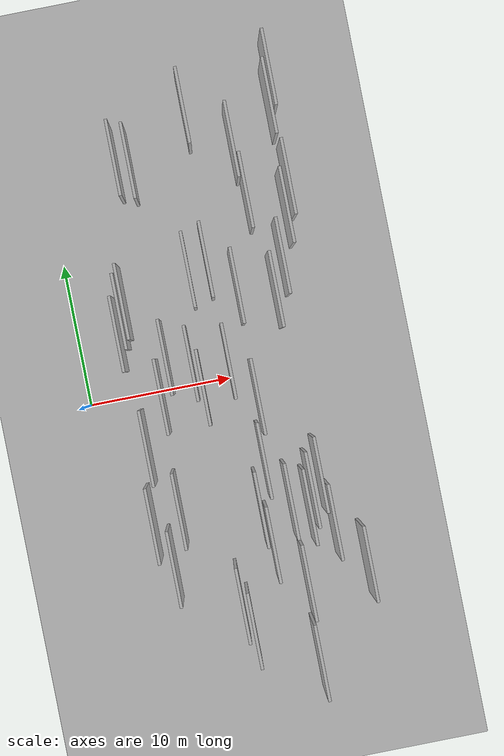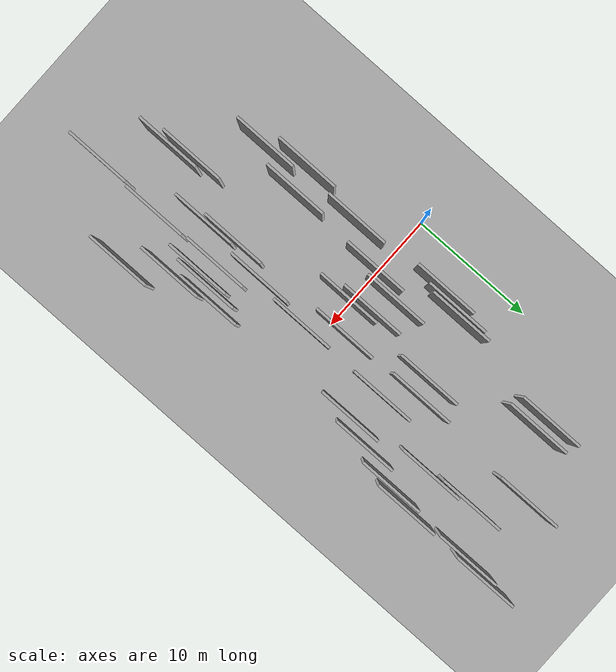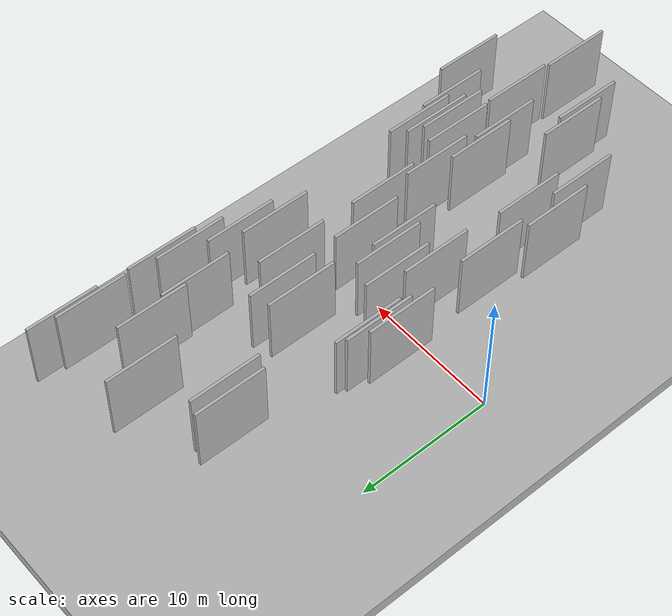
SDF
<?xml version="1.0" encoding="utf-8"?>

<sdf version="1.6">

   <world name="default">

      <gui fullscreen="0">

         <camera name="user_camera">

            <pose>-15 0 4.57585 0 0 0</pose>

            <view_controller>orbit</view_controller>

         </camera>

      </gui>

      <scene>

         <sky>

           <clouds>

             <speed>12</speed>

           </clouds>

         </sky>

         <ambient>0.4 0.4 0.4 1</ambient>

         <background>0.7 0.7 0.7 1</background>

         <shadows>1</shadows>

      </scene>

      <gravity>0 0 -9.8066</gravity>

      <magnetic_field>6e-06 2.3e-05 -4.2e-05</magnetic_field>

      <physics default="0" name="default_physics" type="ode">

         <ode>

            <solver>

               <type>quick</type>

               <iters>10</iters>

               <sor>1.0</sor>

               <use_dynamic_moi_rescaling>0</use_dynamic_moi_rescaling>

            </solver>

            <constraints>

               <cfm>0</cfm>

               <erp>0.2</erp>

               <contact_max_correcting_vel>100</contact_max_correcting_vel>

               <contact_surface_layer>0.001</contact_surface_layer>

            </constraints>

         </ode>

         <max_step_size>0.004</max_step_size>

         <real_time_factor>1</real_time_factor>

         <real_time_update_rate>250</real_time_update_rate>

      </physics>

      <light name="sun" type="directional">

         <cast_shadows>1</cast_shadows>

         <pose>0 0 10 0 0 0</pose>

         <diffuse>0.8 0.8 0.8 1</diffuse>

         <specular>0.2 0.2 0.2 1</specular>

         <attenuation>

            <range>1000</range>

            <constant>0.9</constant>

            <linear>0.01</linear>

            <quadratic>0.001</quadratic>

         </attenuation>

         <direction>-0.5 0.1 -0.9</direction>

      </light>

      <include>

         <name>ground_plane_1</name>

         <uri>model://HANNAS_ground_plane</uri>

         <pose>0 0 0  0 0 0</pose>

      </include>

      <include>

         <name>ground_plane_2</name>

         <uri>model://HANNAS_ground_plane</uri>

         <pose>100 0 0  0 0 0</pose>

      </include>

      <model name="HANNAS_wall_1">

         <static>1</static>

         <pose frame="">5.2941 -0.2255 5.0 0.000000 0.000000 1.570796</pose>

         <link name="link">

            <pose frame="">0 0 2.50 0 0 0</pose>

            <collision name="collision">

               <geometry>

                  <box>

                     <size>5.00 0.2 5.00</size>

                  </box>

               </geometry>

               <max_contacts>10</max_contacts>

               <surface>

                  <contact>

                     <ode/>

                  </contact>

                  <bounce/>

                  <friction>

                     <torsional>

                        <ode/>

                     </torsional>

                     <ode/>

                  </friction>

               </surface>

            </collision>

            <visual name="visual">

               <cast_shadows>0</cast_shadows>

               <geometry>

                  <box>

                     <size>5.00 0.2 5.00</size>

                  </box>

               </geometry>

               <material>

                  <script>

                     <uri>model://HANNAS_wall/materials/scripts</uri>

                     <uri>model://HANNAS_wall/materials/textures</uri>

                     <name>vrc/HANNAS_wall</name>

                  </script>

               </material>

            </visual>

            <self_collide>0</self_collide>

            <enable_wind>0</enable_wind>

            <kinematic>0</kinematic>

         </link>

      </model>

      <model name="HANNAS_wall_2">

         <static>1</static>

         <pose frame="">13.7056 -7.9675 5.0 0.000000 0.000000 1.570796</pose>

         <link name="link">

            <pose frame="">0 0 2.50 0 0 0</pose>

            <collision name="collision">

               <geometry>

                  <box>

                     <size>5.00 0.2 5.00</size>

                  </box>

               </geometry>

               <max_contacts>10</max_contacts>

               <surface>

                  <contact>

                     <ode/>

                  </contact>

                  <bounce/>

                  <friction>

                     <torsional>

                        <ode/>

                     </torsional>

                     <ode/>

                  </friction>

               </surface>

            </collision>

            <visual name="visual">

               <cast_shadows>0</cast_shadows>

               <geometry>

                  <box>

                     <size>5.00 0.2 5.00</size>

                  </box>

               </geometry>

               <material>

                  <script>

                     <uri>model://HANNAS_wall/materials/scripts</uri>

                     <uri>model://HANNAS_wall/materials/textures</uri>

                     <name>vrc/HANNAS_wall</name>

                  </script>

               </material>

            </visual>

            <self_collide>0</self_collide>

            <enable_wind>0</enable_wind>

            <kinematic>0</kinematic>

         </link>

      </model>

      <model name="HANNAS_wall_3">

         <static>1</static>

         <pose frame="">14.7441 7.1923 5.0 0.000000 0.000000 1.570796</pose>

         <link name="link">

            <pose frame="">0 0 2.50 0 0 0</pose>

            <collision name="collision">

               <geometry>

                  <box>

                     <size>5.00 0.2 5.00</size>

                  </box>

               </geometry>

               <max_contacts>10</max_contacts>

               <surface>

                  <contact>

                     <ode/>

                  </contact>

                  <bounce/>

                  <friction>

                     <torsional>

                        <ode/>

                     </torsional>

                     <ode/>

                  </friction>

               </surface>

            </collision>

            <visual name="visual">

               <cast_shadows>0</cast_shadows>

               <geometry>

                  <box>

                     <size>5.00 0.2 5.00</size>

                  </box>

               </geometry>

               <material>

                  <script>

                     <uri>model://HANNAS_wall/materials/scripts</uri>

                     <uri>model://HANNAS_wall/materials/textures</uri>

                     <name>vrc/HANNAS_wall</name>

                  </script>

               </material>

            </visual>

            <self_collide>0</self_collide>

            <enable_wind>0</enable_wind>

            <kinematic>0</kinematic>

         </link>

      </model>

      <model name="HANNAS_wall_4">

         <static>1</static>

         <pose frame="">7.5985 1.5305 5.0 0.000000 0.000000 1.570796</pose>

         <link name="link">

            <pose frame="">0 0 2.50 0 0 0</pose>

            <collision name="collision">

               <geometry>

                  <box>

                     <size>5.00 0.2 5.00</size>

                  </box>

               </geometry>

               <max_contacts>10</max_contacts>

               <surface>

                  <contact>

                     <ode/>

                  </contact>

                  <bounce/>

                  <friction>

                     <torsional>

                        <ode/>

                     </torsional>

                     <ode/>

                  </friction>

               </surface>

            </collision>

            <visual name="visual">

               <cast_shadows>0</cast_shadows>

               <geometry>

                  <box>

                     <size>5.00 0.2 5.00</size>

                  </box>

               </geometry>

               <material>

                  <script>

                     <uri>model://HANNAS_wall/materials/scripts</uri>

                     <uri>model://HANNAS_wall/materials/textures</uri>

                     <name>vrc/HANNAS_wall</name>

                  </script>

               </material>

            </visual>

            <self_collide>0</self_collide>

            <enable_wind>0</enable_wind>

            <kinematic>0</kinematic>

         </link>

      </model>

      <model name="HANNAS_wall_5">

         <static>1</static>

         <pose frame="">14.7294 -10.2809 5.0 0.000000 0.000000 1.570796</pose>

         <link name="link">

            <pose frame="">0 0 2.50 0 0 0</pose>

            <collision name="collision">

               <geometry>

                  <box>

                     <size>5.00 0.2 5.00</size>

                  </box>

               </geometry>

               <max_contacts>10</max_contacts>

               <surface>

                  <contact>

                     <ode/>

                  </contact>

                  <bounce/>

                  <friction>

                     <torsional>

                        <ode/>

                     </torsional>

                     <ode/>

                  </friction>

               </surface>

            </collision>

            <visual name="visual">

               <cast_shadows>0</cast_shadows>

               <geometry>

                  <box>

                     <size>5.00 0.2 5.00</size>

                  </box>

               </geometry>

               <material>

                  <script>

                     <uri>model://HANNAS_wall/materials/scripts</uri>

                     <uri>model://HANNAS_wall/materials/textures</uri>

                     <name>vrc/HANNAS_wall</name>

                  </script>

               </material>

            </visual>

            <self_collide>0</self_collide>

            <enable_wind>0</enable_wind>

            <kinematic>0</kinematic>

         </link>

      </model>

      <model name="HANNAS_wall_6">

         <static>1</static>

         <pose frame="">3.2728 4.2991 5.0 0.000000 0.000000 1.570796</pose>

         <link name="link">

            <pose frame="">0 0 2.50 0 0 0</pose>

            <collision name="collision">

               <geometry>

                  <box>

                     <size>5.00 0.2 5.00</size>

                  </box>

               </geometry>

               <max_contacts>10</max_contacts>

               <surface>

                  <contact>

                     <ode/>

                  </contact>

                  <bounce/>

                  <friction>

                     <torsional>

                        <ode/>

                     </torsional>

                     <ode/>

                  </friction>

               </surface>

            </collision>

            <visual name="visual">

               <cast_shadows>0</cast_shadows>

               <geometry>

                  <box>

                     <size>5.00 0.2 5.00</size>

                  </box>

               </geometry>

               <material>

                  <script>

                     <uri>model://HANNAS_wall/materials/scripts</uri>

                     <uri>model://HANNAS_wall/materials/textures</uri>

                     <name>vrc/HANNAS_wall</name>

                  </script>

               </material>

            </visual>

            <self_collide>0</self_collide>

            <enable_wind>0</enable_wind>

            <kinematic>0</kinematic>

         </link>

      </model>

      <model name="HANNAS_wall_7">

         <static>1</static>

         <pose frame="">10.5431 -10.9460 5.0 0.000000 0.000000 1.570796</pose>

         <link name="link">

            <pose frame="">0 0 2.50 0 0 0</pose>

            <collision name="collision">

               <geometry>

                  <box>

                     <size>5.00 0.2 5.00</size>

                  </box>

               </geometry>

               <max_contacts>10</max_contacts>

               <surface>

                  <contact>

                     <ode/>

                  </contact>

                  <bounce/>

                  <friction>

                     <torsional>

                        <ode/>

                     </torsional>

                     <ode/>

                  </friction>

               </surface>

            </collision>

            <visual name="visual">

               <cast_shadows>0</cast_shadows>

               <geometry>

                  <box>

                     <size>5.00 0.2 5.00</size>

                  </box>

               </geometry>

               <material>

                  <script>

                     <uri>model://HANNAS_wall/materials/scripts</uri>

                     <uri>model://HANNAS_wall/materials/textures</uri>

                     <name>vrc/HANNAS_wall</name>

                  </script>

               </material>

            </visual>

            <self_collide>0</self_collide>

            <enable_wind>0</enable_wind>

            <kinematic>0</kinematic>

         </link>

      </model>

      <model name="HANNAS_wall_8">

         <static>1</static>

         <pose frame="">15.8792 17.4398 5.0 0.000000 0.000000 1.570796</pose>

         <link name="link">

            <pose frame="">0 0 2.50 0 0 0</pose>

            <collision name="collision">

               <geometry>

                  <box>

                     <size>5.00 0.2 5.00</size>

                  </box>

               </geometry>

               <max_contacts>10</max_contacts>

               <surface>

                  <contact>

                     <ode/>

                  </contact>

                  <bounce/>

                  <friction>

                     <torsional>

                        <ode/>

                     </torsional>

                     <ode/>

                  </friction>

               </surface>

            </collision>

            <visual name="visual">

               <cast_shadows>0</cast_shadows>

               <geometry>

                  <box>

                     <size>5.00 0.2 5.00</size>

                  </box>

               </geometry>

               <material>

                  <script>

                     <uri>model://HANNAS_wall/materials/scripts</uri>

                     <uri>model://HANNAS_wall/materials/textures</uri>

                     <name>vrc/HANNAS_wall</name>

                  </script>

               </material>

            </visual>

            <self_collide>0</self_collide>

            <enable_wind>0</enable_wind>

            <kinematic>0</kinematic>

         </link>

      </model>

      <model name="HANNAS_wall_9">

         <static>1</static>

         <pose frame="">9.8408 7.9051 5.0 0.000000 0.000000 1.570796</pose>

         <link name="link">

            <pose frame="">0 0 2.50 0 0 0</pose>

            <collision name="collision">

               <geometry>

                  <box>

                     <size>5.00 0.2 5.00</size>

                  </box>

               </geometry>

               <max_contacts>10</max_contacts>

               <surface>

                  <contact>

                     <ode/>

                  </contact>

                  <bounce/>

                  <friction>

                     <torsional>

                        <ode/>

                     </torsional>

                     <ode/>

                  </friction>

               </surface>

            </collision>

            <visual name="visual">

               <cast_shadows>0</cast_shadows>

               <geometry>

                  <box>

                     <size>5.00 0.2 5.00</size>

                  </box>

               </geometry>

               <material>

                  <script>

                     <uri>model://HANNAS_wall/materials/scripts</uri>

                     <uri>model://HANNAS_wall/materials/textures</uri>

                     <name>vrc/HANNAS_wall</name>

                  </script>

               </material>

            </visual>

            <self_collide>0</self_collide>

            <enable_wind>0</enable_wind>

            <kinematic>0</kinematic>

         </link>

      </model>

      <model name="HANNAS_wall_10">

         <static>1</static>

         <pose frame="">10.2322 -8.5907 5.0 0.000000 0.000000 1.570796</pose>

         <link name="link">

            <pose frame="">0 0 2.50 0 0 0</pose>

            <collision name="collision">

               <geometry>

                  <box>

                     <size>5.00 0.2 5.00</size>

                  </box>

               </geometry>

               <max_contacts>10</max_contacts>

               <surface>

                  <contact>

                     <ode/>

                  </contact>

                  <bounce/>

                  <friction>

                     <torsional>

                        <ode/>

                     </torsional>

                     <ode/>

                  </friction>

               </surface>

            </collision>

            <visual name="visual">

               <cast_shadows>0</cast_shadows>

               <geometry>

                  <box>

                     <size>5.00 0.2 5.00</size>

                  </box>

               </geometry>

               <material>

                  <script>

                     <uri>model://HANNAS_wall/materials/scripts</uri>

                     <uri>model://HANNAS_wall/materials/textures</uri>

                     <name>vrc/HANNAS_wall</name>

                  </script>

               </material>

            </visual>

            <self_collide>0</self_collide>

            <enable_wind>0</enable_wind>

            <kinematic>0</kinematic>

         </link>

      </model>

      <model name="HANNAS_wall_11">

         <static>1</static>

         <pose frame="">3.1323 -8.2820 5.0 0.000000 0.000000 1.570796</pose>

         <link name="link">

            <pose frame="">0 0 2.50 0 0 0</pose>

            <collision name="collision">

               <geometry>

                  <box>

                     <size>5.00 0.2 5.00</size>

                  </box>

               </geometry>

               <max_contacts>10</max_contacts>

               <surface>

                  <contact>

                     <ode/>

                  </contact>

                  <bounce/>

                  <friction>

                     <torsional>

                        <ode/>

                     </torsional>

                     <ode/>

                  </friction>

               </surface>

            </collision>

            <visual name="visual">

               <cast_shadows>0</cast_shadows>

               <geometry>

                  <box>

                     <size>5.00 0.2 5.00</size>

                  </box>

               </geometry>

               <material>

                  <script>

                     <uri>model://HANNAS_wall/materials/scripts</uri>

                     <uri>model://HANNAS_wall/materials/textures</uri>

                     <name>vrc/HANNAS_wall</name>

                  </script>

               </material>

            </visual>

            <self_collide>0</self_collide>

            <enable_wind>0</enable_wind>

            <kinematic>0</kinematic>

         </link>

      </model>

      <model name="HANNAS_wall_12">

         <static>1</static>

         <pose frame="">12.3308 -13.7963 5.0 0.000000 0.000000 1.570796</pose>

         <link name="link">

            <pose frame="">0 0 2.50 0 0 0</pose>

            <collision name="collision">

               <geometry>

                  <box>

                     <size>5.00 0.2 5.00</size>

                  </box>

               </geometry>

               <max_contacts>10</max_contacts>

               <surface>

                  <contact>

                     <ode/>

                  </contact>

                  <bounce/>

                  <friction>

                     <torsional>

                        <ode/>

                     </torsional>

                     <ode/>

                  </friction>

               </surface>

            </collision>

            <visual name="visual">

               <cast_shadows>0</cast_shadows>

               <geometry>

                  <box>

                     <size>5.00 0.2 5.00</size>

                  </box>

               </geometry>

               <material>

                  <script>

                     <uri>model://HANNAS_wall/materials/scripts</uri>

                     <uri>model://HANNAS_wall/materials/textures</uri>

                     <name>vrc/HANNAS_wall</name>

                  </script>

               </material>

            </visual>

            <self_collide>0</self_collide>

            <enable_wind>0</enable_wind>

            <kinematic>0</kinematic>

         </link>

      </model>

      <model name="HANNAS_wall_13">

         <static>1</static>

         <pose frame="">6.1581 15.1049 5.0 0.000000 0.000000 1.570796</pose>

         <link name="link">

            <pose frame="">0 0 2.50 0 0 0</pose>

            <collision name="collision">

               <geometry>

                  <box>

                     <size>5.00 0.2 5.00</size>

                  </box>

               </geometry>

               <max_contacts>10</max_contacts>

               <surface>

                  <contact>

                     <ode/>

                  </contact>

                  <bounce/>

                  <friction>

                     <torsional>

                        <ode/>

                     </torsional>

                     <ode/>

                  </friction>

               </surface>

            </collision>

            <visual name="visual">

               <cast_shadows>0</cast_shadows>

               <geometry>

                  <box>

                     <size>5.00 0.2 5.00</size>

                  </box>

               </geometry>

               <material>

                  <script>

                     <uri>model://HANNAS_wall/materials/scripts</uri>

                     <uri>model://HANNAS_wall/materials/textures</uri>

                     <name>vrc/HANNAS_wall</name>

                  </script>

               </material>

            </visual>

            <self_collide>0</self_collide>

            <enable_wind>0</enable_wind>

            <kinematic>0</kinematic>

         </link>

      </model>

      <model name="HANNAS_wall_14">

         <static>1</static>

         <pose frame="">11.4802 5.8726 5.0 0.000000 0.000000 1.570796</pose>

         <link name="link">

            <pose frame="">0 0 2.50 0 0 0</pose>

            <collision name="collision">

               <geometry>

                  <box>

                     <size>5.00 0.2 5.00</size>

                  </box>

               </geometry>

               <max_contacts>10</max_contacts>

               <surface>

                  <contact>

                     <ode/>

                  </contact>

                  <bounce/>

                  <friction>

                     <torsional>

                        <ode/>

                     </torsional>

                     <ode/>

                  </friction>

               </surface>

            </collision>

            <visual name="visual">

               <cast_shadows>0</cast_shadows>

               <geometry>

                  <box>

                     <size>5.00 0.2 5.00</size>

                  </box>

               </geometry>

               <material>

                  <script>

                     <uri>model://HANNAS_wall/materials/scripts</uri>

                     <uri>model://HANNAS_wall/materials/textures</uri>

                     <name>vrc/HANNAS_wall</name>

                  </script>

               </material>

            </visual>

            <self_collide>0</self_collide>

            <enable_wind>0</enable_wind>

            <kinematic>0</kinematic>

         </link>

      </model>

      <model name="HANNAS_wall_15">

         <static>1</static>

         <pose frame="">3.9686 -11.2582 5.0 0.000000 0.000000 1.570796</pose>

         <link name="link">

            <pose frame="">0 0 2.50 0 0 0</pose>

            <collision name="collision">

               <geometry>

                  <box>

                     <size>5.00 0.2 5.00</size>

                  </box>

               </geometry>

               <max_contacts>10</max_contacts>

               <surface>

                  <contact>

                     <ode/>

                  </contact>

                  <bounce/>

                  <friction>

                     <torsional>

                        <ode/>

                     </torsional>

                     <ode/>

                  </friction>

               </surface>

            </collision>

            <visual name="visual">

               <cast_shadows>0</cast_shadows>

               <geometry>

                  <box>

                     <size>5.00 0.2 5.00</size>

                  </box>

               </geometry>

               <material>

                  <script>

                     <uri>model://HANNAS_wall/materials/scripts</uri>

                     <uri>model://HANNAS_wall/materials/textures</uri>

                     <name>vrc/HANNAS_wall</name>

                  </script>

               </material>

            </visual>

            <self_collide>0</self_collide>

            <enable_wind>0</enable_wind>

            <kinematic>0</kinematic>

         </link>

      </model>

      <model name="HANNAS_wall_16">

         <static>1</static>

         <pose frame="">13.9199 5.1631 5.0 0.000000 0.000000 1.570796</pose>

         <link name="link">

            <pose frame="">0 0 2.50 0 0 0</pose>

            <collision name="collision">

               <geometry>

                  <box>

                     <size>5.00 0.2 5.00</size>

                  </box>

               </geometry>

               <max_contacts>10</max_contacts>

               <surface>

                  <contact>

                     <ode/>

                  </contact>

                  <bounce/>

                  <friction>

                     <torsional>

                        <ode/>

                     </torsional>

                     <ode/>

                  </friction>

               </surface>

            </collision>

            <visual name="visual">

               <cast_shadows>0</cast_shadows>

               <geometry>

                  <box>

                     <size>5.00 0.2 5.00</size>

                  </box>

               </geometry>

               <material>

                  <script>

                     <uri>model://HANNAS_wall/materials/scripts</uri>

                     <uri>model://HANNAS_wall/materials/textures</uri>

                     <name>vrc/HANNAS_wall</name>

                  </script>

               </material>

            </visual>

            <self_collide>0</self_collide>

            <enable_wind>0</enable_wind>

            <kinematic>0</kinematic>

         </link>

      </model>

      <model name="HANNAS_wall_17">

         <static>1</static>

         <pose frame="">3.9886 6.2887 5.0 0.000000 0.000000 1.570796</pose>

         <link name="link">

            <pose frame="">0 0 2.50 0 0 0</pose>

            <collision name="collision">

               <geometry>

                  <box>

                     <size>5.00 0.2 5.00</size>

                  </box>

               </geometry>

               <max_contacts>10</max_contacts>

               <surface>

                  <contact>

                     <ode/>

                  </contact>

                  <bounce/>

                  <friction>

                     <torsional>

                        <ode/>

                     </torsional>

                     <ode/>

                  </friction>

               </surface>

            </collision>

            <visual name="visual">

               <cast_shadows>0</cast_shadows>

               <geometry>

                  <box>

                     <size>5.00 0.2 5.00</size>

                  </box>

               </geometry>

               <material>

                  <script>

                     <uri>model://HANNAS_wall/materials/scripts</uri>

                     <uri>model://HANNAS_wall/materials/textures</uri>

                     <name>vrc/HANNAS_wall</name>

                  </script>

               </material>

            </visual>

            <self_collide>0</self_collide>

            <enable_wind>0</enable_wind>

            <kinematic>0</kinematic>

         </link>

      </model>

      <model name="HANNAS_wall_18">

         <static>1</static>

         <pose frame="">10.2752 17.9012 5.0 0.000000 0.000000 1.570796</pose>

         <link name="link">

            <pose frame="">0 0 2.50 0 0 0</pose>

            <collision name="collision">

               <geometry>

                  <box>

                     <size>5.00 0.2 5.00</size>

                  </box>

               </geometry>

               <max_contacts>10</max_contacts>

               <surface>

                  <contact>

                     <ode/>

                  </contact>

                  <bounce/>

                  <friction>

                     <torsional>

                        <ode/>

                     </torsional>

                     <ode/>

                  </friction>

               </surface>

            </collision>

            <visual name="visual">

               <cast_shadows>0</cast_shadows>

               <geometry>

                  <box>

                     <size>5.00 0.2 5.00</size>

                  </box>

               </geometry>

               <material>

                  <script>

                     <uri>model://HANNAS_wall/materials/scripts</uri>

                     <uri>model://HANNAS_wall/materials/textures</uri>

                     <name>vrc/HANNAS_wall</name>

                  </script>

               </material>

            </visual>

            <self_collide>0</self_collide>

            <enable_wind>0</enable_wind>

            <kinematic>0</kinematic>

         </link>

      </model>

      <model name="HANNAS_wall_19">

         <static>1</static>

         <pose frame="">8.5793 7.4899 5.0 0.000000 0.000000 1.570796</pose>

         <link name="link">

            <pose frame="">0 0 2.50 0 0 0</pose>

            <collision name="collision">

               <geometry>

                  <box>

                     <size>5.00 0.2 5.00</size>

                  </box>

               </geometry>

               <max_contacts>10</max_contacts>

               <surface>

                  <contact>

                     <ode/>

                  </contact>

                  <bounce/>

                  <friction>

                     <torsional>

                        <ode/>

                     </torsional>

                     <ode/>

                  </friction>

               </surface>

            </collision>

            <visual name="visual">

               <cast_shadows>0</cast_shadows>

               <geometry>

                  <box>

                     <size>5.00 0.2 5.00</size>

                  </box>

               </geometry>

               <material>

                  <script>

                     <uri>model://HANNAS_wall/materials/scripts</uri>

                     <uri>model://HANNAS_wall/materials/textures</uri>

                     <name>vrc/HANNAS_wall</name>

                  </script>

               </material>

            </visual>

            <self_collide>0</self_collide>

            <enable_wind>0</enable_wind>

            <kinematic>0</kinematic>

         </link>

      </model>

      <model name="HANNAS_wall_20">

         <static>1</static>

         <pose frame="">3.7101 5.6964 5.0 0.000000 0.000000 1.570796</pose>

         <link name="link">

            <pose frame="">0 0 2.50 0 0 0</pose>

            <collision name="collision">

               <geometry>

                  <box>

                     <size>5.00 0.2 5.00</size>

                  </box>

               </geometry>

               <max_contacts>10</max_contacts>

               <surface>

                  <contact>

                     <ode/>

                  </contact>

                  <bounce/>

                  <friction>

                     <torsional>

                        <ode/>

                     </torsional>

                     <ode/>

                  </friction>

               </surface>

            </collision>

            <visual name="visual">

               <cast_shadows>0</cast_shadows>

               <geometry>

                  <box>

                     <size>5.00 0.2 5.00</size>

                  </box>

               </geometry>

               <material>

                  <script>

                     <uri>model://HANNAS_wall/materials/scripts</uri>

                     <uri>model://HANNAS_wall/materials/textures</uri>

                     <name>vrc/HANNAS_wall</name>

                  </script>

               </material>

            </visual>

            <self_collide>0</self_collide>

            <enable_wind>0</enable_wind>

            <kinematic>0</kinematic>

         </link>

      </model>

      <model name="HANNAS_wall_21">

         <static>1</static>

         <pose frame="">10.0108 1.2036 5.0 0.000000 0.000000 1.570796</pose>

         <link name="link">

            <pose frame="">0 0 2.50 0 0 0</pose>

            <collision name="collision">

               <geometry>

                  <box>

                     <size>5.00 0.2 5.00</size>

                  </box>

               </geometry>

               <max_contacts>10</max_contacts>

               <surface>

                  <contact>

                     <ode/>

                  </contact>

                  <bounce/>

                  <friction>

                     <torsional>

                        <ode/>

                     </torsional>

                     <ode/>

                  </friction>

               </surface>

            </collision>

            <visual name="visual">

               <cast_shadows>0</cast_shadows>

               <geometry>

                  <box>

                     <size>5.00 0.2 5.00</size>

                  </box>

               </geometry>

               <material>

                  <script>

                     <uri>model://HANNAS_wall/materials/scripts</uri>

                     <uri>model://HANNAS_wall/materials/textures</uri>

                     <name>vrc/HANNAS_wall</name>

                  </script>

               </material>

            </visual>

            <self_collide>0</self_collide>

            <enable_wind>0</enable_wind>

            <kinematic>0</kinematic>

         </link>

      </model>

      <model name="HANNAS_wall_22">

         <static>1</static>

         <pose frame="">13.3355 -9.0173 5.0 0.000000 0.000000 1.570796</pose>

         <link name="link">

            <pose frame="">0 0 2.50 0 0 0</pose>

            <collision name="collision">

               <geometry>

                  <box>

                     <size>5.00 0.2 5.00</size>

                  </box>

               </geometry>

               <max_contacts>10</max_contacts>

               <surface>

                  <contact>

                     <ode/>

                  </contact>

                  <bounce/>

                  <friction>

                     <torsional>

                        <ode/>

                     </torsional>

                     <ode/>

                  </friction>

               </surface>

            </collision>

            <visual name="visual">

               <cast_shadows>0</cast_shadows>

               <geometry>

                  <box>

                     <size>5.00 0.2 5.00</size>

                  </box>

               </geometry>

               <material>

                  <script>

                     <uri>model://HANNAS_wall/materials/scripts</uri>

                     <uri>model://HANNAS_wall/materials/textures</uri>

                     <name>vrc/HANNAS_wall</name>

                  </script>

               </material>

            </visual>

            <self_collide>0</self_collide>

            <enable_wind>0</enable_wind>

            <kinematic>0</kinematic>

         </link>

      </model>

      <model name="HANNAS_wall_23">

         <static>1</static>

         <pose frame="">16.4413 -13.3517 5.0 0.000000 0.000000 1.570796</pose>

         <link name="link">

            <pose frame="">0 0 2.50 0 0 0</pose>

            <collision name="collision">

               <geometry>

                  <box>

                     <size>5.00 0.2 5.00</size>

                  </box>

               </geometry>

               <max_contacts>10</max_contacts>

               <surface>

                  <contact>

                     <ode/>

                  </contact>

                  <bounce/>

                  <friction>

                     <torsional>

                        <ode/>

                     </torsional>

                     <ode/>

                  </friction>

               </surface>

            </collision>

            <visual name="visual">

               <cast_shadows>0</cast_shadows>

               <geometry>

                  <box>

                     <size>5.00 0.2 5.00</size>

                  </box>

               </geometry>

               <material>

                  <script>

                     <uri>model://HANNAS_wall/materials/scripts</uri>

                     <uri>model://HANNAS_wall/materials/textures</uri>

                     <name>vrc/HANNAS_wall</name>

                  </script>

               </material>

            </visual>

            <self_collide>0</self_collide>

            <enable_wind>0</enable_wind>

            <kinematic>0</kinematic>

         </link>

      </model>

      <model name="HANNAS_wall_24">

         <static>1</static>

         <pose frame="">8.3003 -16.1279 5.0 0.000000 0.000000 1.570796</pose>

         <link name="link">

            <pose frame="">0 0 2.50 0 0 0</pose>

            <collision name="collision">

               <geometry>

                  <box>

                     <size>5.00 0.2 5.00</size>

                  </box>

               </geometry>

               <max_contacts>10</max_contacts>

               <surface>

                  <contact>

                     <ode/>

                  </contact>

                  <bounce/>

                  <friction>

                     <torsional>

                        <ode/>

                     </torsional>

                     <ode/>

                  </friction>

               </surface>

            </collision>

            <visual name="visual">

               <cast_shadows>0</cast_shadows>

               <geometry>

                  <box>

                     <size>5.00 0.2 5.00</size>

                  </box>

               </geometry>

               <material>

                  <script>

                     <uri>model://HANNAS_wall/materials/scripts</uri>

                     <uri>model://HANNAS_wall/materials/textures</uri>

                     <name>vrc/HANNAS_wall</name>

                  </script>

               </material>

            </visual>

            <self_collide>0</self_collide>

            <enable_wind>0</enable_wind>

            <kinematic>0</kinematic>

         </link>

      </model>

      <model name="HANNAS_wall_25">

         <static>1</static>

         <pose frame="">16.0839 12.1166 5.0 0.000000 0.000000 1.570796</pose>

         <link name="link">

            <pose frame="">0 0 2.50 0 0 0</pose>

            <collision name="collision">

               <geometry>

                  <box>

                     <size>5.00 0.2 5.00</size>

                  </box>

               </geometry>

               <max_contacts>10</max_contacts>

               <surface>

                  <contact>

                     <ode/>

                  </contact>

                  <bounce/>

                  <friction>

                     <torsional>

                        <ode/>

                     </torsional>

                     <ode/>

                  </friction>

               </surface>

            </collision>

            <visual name="visual">

               <cast_shadows>0</cast_shadows>

               <geometry>

                  <box>

                     <size>5.00 0.2 5.00</size>

                  </box>

               </geometry>

               <material>

                  <script>

                     <uri>model://HANNAS_wall/materials/scripts</uri>

                     <uri>model://HANNAS_wall/materials/textures</uri>

                     <name>vrc/HANNAS_wall</name>

                  </script>

               </material>

            </visual>

            <self_collide>0</self_collide>

            <enable_wind>0</enable_wind>

            <kinematic>0</kinematic>

         </link>

      </model>

      <model name="HANNAS_wall_26">

         <static>1</static>

         <pose frame="">13.2229 11.7885 5.0 0.000000 0.000000 1.570796</pose>

         <link name="link">

            <pose frame="">0 0 2.50 0 0 0</pose>

            <collision name="collision">

               <geometry>

                  <box>

                     <size>5.00 0.2 5.00</size>

                  </box>

               </geometry>

               <max_contacts>10</max_contacts>

               <surface>

                  <contact>

                     <ode/>

                  </contact>

                  <bounce/>

                  <friction>

                     <torsional>

                        <ode/>

                     </torsional>

                     <ode/>

                  </friction>

               </surface>

            </collision>

            <visual name="visual">

               <cast_shadows>0</cast_shadows>

               <geometry>

                  <box>

                     <size>5.00 0.2 5.00</size>

                  </box>

               </geometry>

               <material>

                  <script>

                     <uri>model://HANNAS_wall/materials/scripts</uri>

                     <uri>model://HANNAS_wall/materials/textures</uri>

                     <name>vrc/HANNAS_wall</name>

                  </script>

               </material>

            </visual>

            <self_collide>0</self_collide>

            <enable_wind>0</enable_wind>

            <kinematic>0</kinematic>

         </link>

      </model>

      <model name="HANNAS_wall_27">

         <static>1</static>

         <pose frame="">11.0300 -5.5324 5.0 0.000000 0.000000 1.570796</pose>

         <link name="link">

            <pose frame="">0 0 2.50 0 0 0</pose>

            <collision name="collision">

               <geometry>

                  <box>

                     <size>5.00 0.2 5.00</size>

                  </box>

               </geometry>

               <max_contacts>10</max_contacts>

               <surface>

                  <contact>

                     <ode/>

                  </contact>

                  <bounce/>

                  <friction>

                     <torsional>

                        <ode/>

                     </torsional>

                     <ode/>

                  </friction>

               </surface>

            </collision>

            <visual name="visual">

               <cast_shadows>0</cast_shadows>

               <geometry>

                  <box>

                     <size>5.00 0.2 5.00</size>

                  </box>

               </geometry>

               <material>

                  <script>

                     <uri>model://HANNAS_wall/materials/scripts</uri>

                     <uri>model://HANNAS_wall/materials/textures</uri>

                     <name>vrc/HANNAS_wall</name>

                  </script>

               </material>

            </visual>

            <self_collide>0</self_collide>

            <enable_wind>0</enable_wind>

            <kinematic>0</kinematic>

         </link>

      </model>

      <model name="HANNAS_wall_28">

         <static>1</static>

         <pose frame="">5.2587 15.4548 5.0 0.000000 0.000000 1.570796</pose>

         <link name="link">

            <pose frame="">0 0 2.50 0 0 0</pose>

            <collision name="collision">

               <geometry>

                  <box>

                     <size>5.00 0.2 5.00</size>

                  </box>

               </geometry>

               <max_contacts>10</max_contacts>

               <surface>

                  <contact>

                     <ode/>

                  </contact>

                  <bounce/>

                  <friction>

                     <torsional>

                        <ode/>

                     </torsional>

                     <ode/>

                  </friction>

               </surface>

            </collision>

            <visual name="visual">

               <cast_shadows>0</cast_shadows>

               <geometry>

                  <box>

                     <size>5.00 0.2 5.00</size>

                  </box>

               </geometry>

               <material>

                  <script>

                     <uri>model://HANNAS_wall/materials/scripts</uri>

                     <uri>model://HANNAS_wall/materials/textures</uri>

                     <name>vrc/HANNAS_wall</name>

                  </script>

               </material>

            </visual>

            <self_collide>0</self_collide>

            <enable_wind>0</enable_wind>

            <kinematic>0</kinematic>

         </link>

      </model>

      <model name="HANNAS_wall_29">

         <static>1</static>

         <pose frame="">15.6280 10.3433 5.0 0.000000 0.000000 1.570796</pose>

         <link name="link">

            <pose frame="">0 0 2.50 0 0 0</pose>

            <collision name="collision">

               <geometry>

                  <box>

                     <size>5.00 0.2 5.00</size>

                  </box>

               </geometry>

               <max_contacts>10</max_contacts>

               <surface>

                  <contact>

                     <ode/>

                  </contact>

                  <bounce/>

                  <friction>

                     <torsional>

                        <ode/>

                     </torsional>

                     <ode/>

                  </friction>

               </surface>

            </collision>

            <visual name="visual">

               <cast_shadows>0</cast_shadows>

               <geometry>

                  <box>

                     <size>5.00 0.2 5.00</size>

                  </box>

               </geometry>

               <material>

                  <script>

                     <uri>model://HANNAS_wall/materials/scripts</uri>

                     <uri>model://HANNAS_wall/materials/textures</uri>

                     <name>vrc/HANNAS_wall</name>

                  </script>

               </material>

            </visual>

            <self_collide>0</self_collide>

            <enable_wind>0</enable_wind>

            <kinematic>0</kinematic>

         </link>

      </model>

      <model name="HANNAS_wall_30">

         <static>1</static>

         <pose frame="">8.0651 -0.1510 5.0 0.000000 0.000000 1.570796</pose>

         <link name="link">

            <pose frame="">0 0 2.50 0 0 0</pose>

            <collision name="collision">

               <geometry>

                  <box>

                     <size>5.00 0.2 5.00</size>

                  </box>

               </geometry>

               <max_contacts>10</max_contacts>

               <surface>

                  <contact>

                     <ode/>

                  </contact>

                  <bounce/>

                  <friction>

                     <torsional>

                        <ode/>

                     </torsional>

                     <ode/>

                  </friction>

               </surface>

            </collision>

            <visual name="visual">

               <cast_shadows>0</cast_shadows>

               <geometry>

                  <box>

                     <size>5.00 0.2 5.00</size>

                  </box>

               </geometry>

               <material>

                  <script>

                     <uri>model://HANNAS_wall/materials/scripts</uri>

                     <uri>model://HANNAS_wall/materials/textures</uri>

                     <name>vrc/HANNAS_wall</name>

                  </script>

               </material>

            </visual>

            <self_collide>0</self_collide>

            <enable_wind>0</enable_wind>

            <kinematic>0</kinematic>

         </link>

      </model>

      <model name="HANNAS_wall_31">

         <static>1</static>

         <pose frame="">12.2216 -8.4413 5.0 0.000000 0.000000 1.570796</pose>

         <link name="link">

            <pose frame="">0 0 2.50 0 0 0</pose>

            <collision name="collision">

               <geometry>

                  <box>

                     <size>5.00 0.2 5.00</size>

                  </box>

               </geometry>

               <max_contacts>10</max_contacts>

               <surface>

                  <contact>

                     <ode/>

                  </contact>

                  <bounce/>

                  <friction>

                     <torsional>

                        <ode/>

                     </torsional>

                     <ode/>

                  </friction>

               </surface>

            </collision>

            <visual name="visual">

               <cast_shadows>0</cast_shadows>

               <geometry>

                  <box>

                     <size>5.00 0.2 5.00</size>

                  </box>

               </geometry>

               <material>

                  <script>

                     <uri>model://HANNAS_wall/materials/scripts</uri>

                     <uri>model://HANNAS_wall/materials/textures</uri>

                     <name>vrc/HANNAS_wall</name>

                  </script>

               </material>

            </visual>

            <self_collide>0</self_collide>

            <enable_wind>0</enable_wind>

            <kinematic>0</kinematic>

         </link>

      </model>

      <model name="HANNAS_wall_32">

         <static>1</static>

         <pose frame="">5.0028 -7.6747 5.0 0.000000 0.000000 1.570796</pose>

         <link name="link">

            <pose frame="">0 0 2.50 0 0 0</pose>

            <collision name="collision">

               <geometry>

                  <box>

                     <size>5.00 0.2 5.00</size>

                  </box>

               </geometry>

               <max_contacts>10</max_contacts>

               <surface>

                  <contact>

                     <ode/>

                  </contact>

                  <bounce/>

                  <friction>

                     <torsional>

                        <ode/>

                     </torsional>

                     <ode/>

                  </friction>

               </surface>

            </collision>

            <visual name="visual">

               <cast_shadows>0</cast_shadows>

               <geometry>

                  <box>

                     <size>5.00 0.2 5.00</size>

                  </box>

               </geometry>

               <material>

                  <script>

                     <uri>model://HANNAS_wall/materials/scripts</uri>

                     <uri>model://HANNAS_wall/materials/textures</uri>

                     <name>vrc/HANNAS_wall</name>

                  </script>

               </material>

            </visual>

            <self_collide>0</self_collide>

            <enable_wind>0</enable_wind>

            <kinematic>0</kinematic>

         </link>

      </model>

      <model name="HANNAS_wall_33">

         <static>1</static>

         <pose frame="">7.8642 -14.4185 5.0 0.000000 0.000000 1.570796</pose>

         <link name="link">

            <pose frame="">0 0 2.50 0 0 0</pose>

            <collision name="collision">

               <geometry>

                  <box>

                     <size>5.00 0.2 5.00</size>

                  </box>

               </geometry>

               <max_contacts>10</max_contacts>

               <surface>

                  <contact>

                     <ode/>

                  </contact>

                  <bounce/>

                  <friction>

                     <torsional>

                        <ode/>

                     </torsional>

                     <ode/>

                  </friction>

               </surface>

            </collision>

            <visual name="visual">

               <cast_shadows>0</cast_shadows>

               <geometry>

                  <box>

                     <size>5.00 0.2 5.00</size>

                  </box>

               </geometry>

               <material>

                  <script>

                     <uri>model://HANNAS_wall/materials/scripts</uri>

                     <uri>model://HANNAS_wall/materials/textures</uri>

                     <name>vrc/HANNAS_wall</name>

                  </script>

               </material>

            </visual>

            <self_collide>0</self_collide>

            <enable_wind>0</enable_wind>

            <kinematic>0</kinematic>

         </link>

      </model>

      <model name="HANNAS_wall_34">

         <static>1</static>

         <pose frame="">6.0273 2.2329 5.0 0.000000 0.000000 1.570796</pose>

         <link name="link">

            <pose frame="">0 0 2.50 0 0 0</pose>

            <collision name="collision">

               <geometry>

                  <box>

                     <size>5.00 0.2 5.00</size>

                  </box>

               </geometry>

               <max_contacts>10</max_contacts>

               <surface>

                  <contact>

                     <ode/>

                  </contact>

                  <bounce/>

                  <friction>

                     <torsional>

                        <ode/>

                     </torsional>

                     <ode/>

                  </friction>

               </surface>

            </collision>

            <visual name="visual">

               <cast_shadows>0</cast_shadows>

               <geometry>

                  <box>

                     <size>5.00 0.2 5.00</size>

                  </box>

               </geometry>

               <material>

                  <script>

                     <uri>model://HANNAS_wall/materials/scripts</uri>

                     <uri>model://HANNAS_wall/materials/textures</uri>

                     <name>vrc/HANNAS_wall</name>

                  </script>

               </material>

            </visual>

            <self_collide>0</self_collide>

            <enable_wind>0</enable_wind>

            <kinematic>0</kinematic>

         </link>

      </model>

      <model name="HANNAS_wall_35">

         <static>1</static>

         <pose frame="">3.7166 -3.3059 5.0 0.000000 0.000000 1.570796</pose>

         <link name="link">

            <pose frame="">0 0 2.50 0 0 0</pose>

            <collision name="collision">

               <geometry>

                  <box>

                     <size>5.00 0.2 5.00</size>

                  </box>

               </geometry>

               <max_contacts>10</max_contacts>

               <surface>

                  <contact>

                     <ode/>

                  </contact>

                  <bounce/>

                  <friction>

                     <torsional>

                        <ode/>

                     </torsional>

                     <ode/>

                  </friction>

               </surface>

            </collision>

            <visual name="visual">

               <cast_shadows>0</cast_shadows>

               <geometry>

                  <box>

                     <size>5.00 0.2 5.00</size>

                  </box>

               </geometry>

               <material>

                  <script>

                     <uri>model://HANNAS_wall/materials/scripts</uri>

                     <uri>model://HANNAS_wall/materials/textures</uri>

                     <name>vrc/HANNAS_wall</name>

                  </script>

               </material>

            </visual>

            <self_collide>0</self_collide>

            <enable_wind>0</enable_wind>

            <kinematic>0</kinematic>

         </link>

      </model>

      <model name="HANNAS_wall_36">

         <static>1</static>

         <pose frame="">12.9621 15.1709 5.0 0.000000 0.000000 1.570796</pose>

         <link name="link">

            <pose frame="">0 0 2.50 0 0 0</pose>

            <collision name="collision">

               <geometry>

                  <box>

                     <size>5.00 0.2 5.00</size>

                  </box>

               </geometry>

               <max_contacts>10</max_contacts>

               <surface>

                  <contact>

                     <ode/>

                  </contact>

                  <bounce/>

                  <friction>

                     <torsional>

                        <ode/>

                     </torsional>

                     <ode/>

                  </friction>

               </surface>

            </collision>

            <visual name="visual">

               <cast_shadows>0</cast_shadows>

               <geometry>

                  <box>

                     <size>5.00 0.2 5.00</size>

                  </box>

               </geometry>

               <material>

                  <script>

                     <uri>model://HANNAS_wall/materials/scripts</uri>

                     <uri>model://HANNAS_wall/materials/textures</uri>

                     <name>vrc/HANNAS_wall</name>

                  </script>

               </material>

            </visual>

            <self_collide>0</self_collide>

            <enable_wind>0</enable_wind>

            <kinematic>0</kinematic>

         </link>

      </model>

      <model name="HANNAS_wall_37">

         <static>1</static>

         <pose frame="">11.4207 -1.4011 5.0 0.000000 0.000000 1.570796</pose>

         <link name="link">

            <pose frame="">0 0 2.50 0 0 0</pose>

            <collision name="collision">

               <geometry>

                  <box>

                     <size>5.00 0.2 5.00</size>

                  </box>

               </geometry>

               <max_contacts>10</max_contacts>

               <surface>

                  <contact>

                     <ode/>

                  </contact>

                  <bounce/>

                  <friction>

                     <torsional>

                        <ode/>

                     </torsional>

                     <ode/>

                  </friction>

               </surface>

            </collision>

            <visual name="visual">

               <cast_shadows>0</cast_shadows>

               <geometry>

                  <box>

                     <size>5.00 0.2 5.00</size>

                  </box>

               </geometry>

               <material>

                  <script>

                     <uri>model://HANNAS_wall/materials/scripts</uri>

                     <uri>model://HANNAS_wall/materials/textures</uri>

                     <name>vrc/HANNAS_wall</name>

                  </script>

               </material>

            </visual>

            <self_collide>0</self_collide>

            <enable_wind>0</enable_wind>

            <kinematic>0</kinematic>

         </link>

      </model>

      <model name="HANNAS_wall_38">

         <static>1</static>

         <pose frame="">14.4159 -7.1150 5.0 0.000000 0.000000 1.570796</pose>

         <link name="link">

            <pose frame="">0 0 2.50 0 0 0</pose>

            <collision name="collision">

               <geometry>

                  <box>

                     <size>5.00 0.2 5.00</size>

                  </box>

               </geometry>

               <max_contacts>10</max_contacts>

               <surface>

                  <contact>

                     <ode/>

                  </contact>

                  <bounce/>

                  <friction>

                     <torsional>

                        <ode/>

                     </torsional>

                     <ode/>

                  </friction>

               </surface>

            </collision>

            <visual name="visual">

               <cast_shadows>0</cast_shadows>

               <geometry>

                  <box>

                     <size>5.00 0.2 5.00</size>

                  </box>

               </geometry>

               <material>

                  <script>

                     <uri>model://HANNAS_wall/materials/scripts</uri>

                     <uri>model://HANNAS_wall/materials/textures</uri>

                     <name>vrc/HANNAS_wall</name>

                  </script>

               </material>

            </visual>

            <self_collide>0</self_collide>

            <enable_wind>0</enable_wind>

            <kinematic>0</kinematic>

         </link>

      </model>

      <model name="HANNAS_wall_39">

         <static>1</static>

         <pose frame="">12.1503 -18.9803 5.0 0.000000 0.000000 1.570796</pose>

         <link name="link">

            <pose frame="">0 0 2.50 0 0 0</pose>

            <collision name="collision">

               <geometry>

                  <box>

                     <size>5.00 0.2 5.00</size>

                  </box>

               </geometry>

               <max_contacts>10</max_contacts>

               <surface>

                  <contact>

                     <ode/>

                  </contact>

                  <bounce/>

                  <friction>

                     <torsional>

                        <ode/>

                     </torsional>

                     <ode/>

                  </friction>

               </surface>

            </collision>

            <visual name="visual">

               <cast_shadows>0</cast_shadows>

               <geometry>

                  <box>

                     <size>5.00 0.2 5.00</size>

                  </box>

               </geometry>

               <material>

                  <script>

                     <uri>model://HANNAS_wall/materials/scripts</uri>

                     <uri>model://HANNAS_wall/materials/textures</uri>

                     <name>vrc/HANNAS_wall</name>

                  </script>

               </material>

            </visual>

            <self_collide>0</self_collide>

            <enable_wind>0</enable_wind>

            <kinematic>0</kinematic>

         </link>

      </model>

      <model name="HANNAS_wall_40">

         <static>1</static>

         <pose frame="">16.2023 19.2426 5.0 0.000000 0.000000 1.570796</pose>

         <link name="link">

            <pose frame="">0 0 2.50 0 0 0</pose>

            <collision name="collision">

               <geometry>

                  <box>

                     <size>5.00 0.2 5.00</size>

                  </box>

               </geometry>

               <max_contacts>10</max_contacts>

               <surface>

                  <contact>

                     <ode/>

                  </contact>

                  <bounce/>

                  <friction>

                     <torsional>

                        <ode/>

                     </torsional>

                     <ode/>

                  </friction>

               </surface>

            </collision>

            <visual name="visual">

               <cast_shadows>0</cast_shadows>

               <geometry>

                  <box>

                     <size>5.00 0.2 5.00</size>

                  </box>

               </geometry>

               <material>

                  <script>

                     <uri>model://HANNAS_wall/materials/scripts</uri>

                     <uri>model://HANNAS_wall/materials/textures</uri>

                     <name>vrc/HANNAS_wall</name>

                  </script>

               </material>

            </visual>

            <self_collide>0</self_collide>

            <enable_wind>0</enable_wind>

            <kinematic>0</kinematic>

         </link>

      </model>

   </world>

</sdf>
